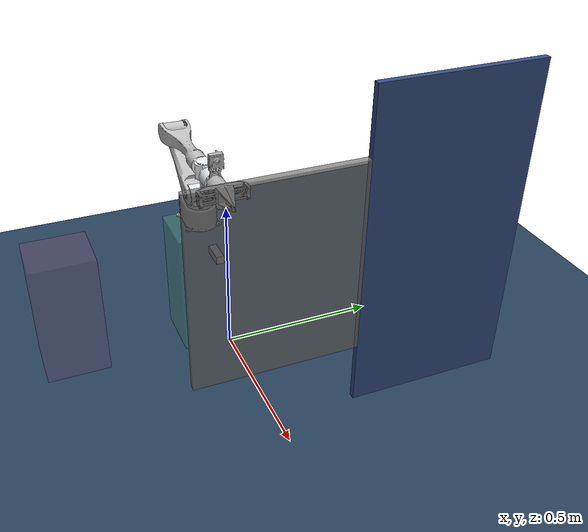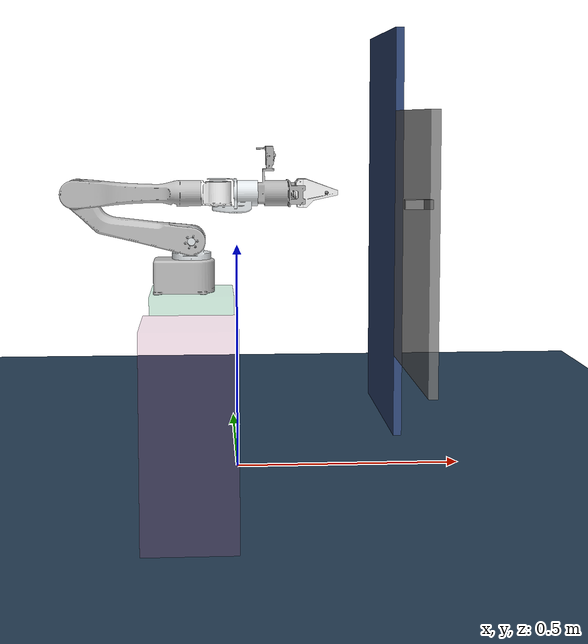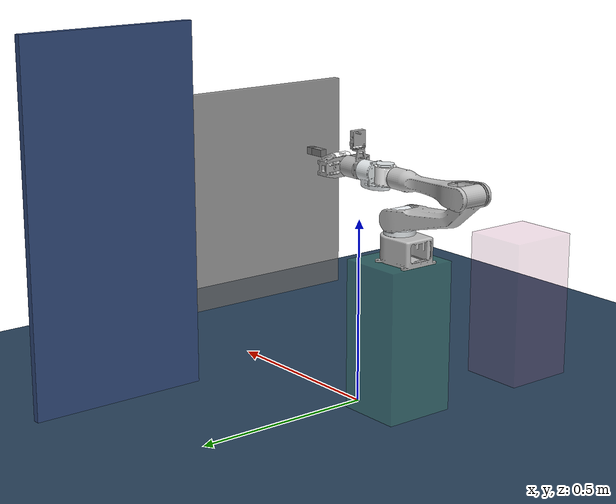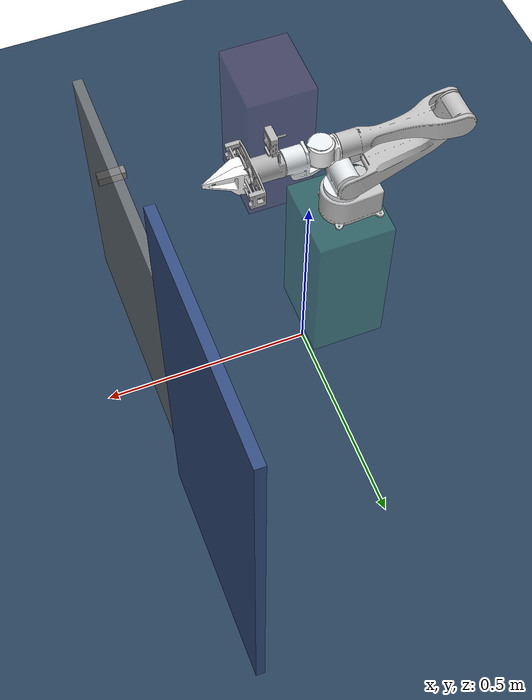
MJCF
<mujoco model="airbot_arm_manipulation_otd">

    <include file="scene.xml"/>
    <include file="airbot_arm_dependencies.xml"/>
    <include file="airbot_arm.xml"/>

    <tendon>
      <fixed name="split">
        <joint joint="endleft" coef="8"/>
        <joint joint="endright" coef="-8"/>
      </fixed>
    </tendon>

    <equality>
    </equality>

    <actuator>
        <position ctrllimited="true" ctrlrange="0.001 0.04" joint="endleft" kp="200" user="1"/>
        <position ctrllimited="true" ctrlrange="-0.04 -0.001" joint="endright" kp="200" user="1"/>

        <!-- 夹爪开合 actuator -->
        <general class="Gripper" name="fingers_actuator" tendon="split" forcerange="-5 5" ctrlrange="0 255" gainprm="0.3137255 0 0" biasprm="0 -100 -10"/>
    </actuator>

    <!-- keyframe -->
    <keyframe>
    </keyframe>

</mujoco>

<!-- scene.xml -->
<mujocoinclude model="airbot_arm_manipulation_otd scene">

    <statistic center="0.3 0 0.4" extent="0.8"/>

    <visual>
      <headlight diffuse="0.6 0.6 0.6" ambient="0.1 0.1 0.1" specular="0 0 0"/>
      <rgba haze="0.15 0.25 0.35 1"/>
      <global azimuth="120" elevation="-20"/>
    </visual>

    <asset>
      <texture type="skybox" builtin="gradient" rgb1="0.3 0.5 0.7" rgb2="0 0 0" width="512" height="3072"/>
      <texture type="2d" name="groundplane" builtin="checker" mark="edge" rgb1="0.2 0.3 0.4" rgb2="0.1 0.2 0.3"
        markrgb="0.8 0.8 0.8" width="300" height="300"/>
      <material name="groundplane" texture="groundplane" texuniform="true" texrepeat="5 5" reflectance="0.2"/>
    </asset>

    <worldbody>
        <!-- Light -->
        <light pos="0 0 1.5" dir="0 0 -1" directional="true"/>

        <!-- floor -->
        <geom name="floor" size="0 0 0.05" type="plane" material="groundplane"/>

        <!-- wall -->
        <body name="wall" pos="0.4 0.5 0.5">
            <geom type="box" size="0.01 0.25 0.5" rgba="0.2 0.3 0.5 0.9"/>
        </body>

        <!-- Door -->
        <body name="door" pos="0.4 0 0.5">
            <inertial pos="0 0 0" mass="0.5" diaginertia="0.001 0.001 0.001" />
            <joint name="joint_door" class="Door" type="hinge" frictionloss="0.01" pos="0.0 0.25 0.0" axis="0 0 1" limited="true" range="0 1.57" />
            <geom type="box" size="0.01 0.25 0.3" rgba="0.5 0.5 0.5 0.8"/>

            <body name="door_handle" pos="-0.02 -0.16 0.1">
                <geom type="box" size="0.03 0.01 0.01" rgba="0.5 0.5 0.5 1"/>
                <inertial mass="0.001" pos="0 0 0" diaginertia="0.001 0.001 0.001"/>
            </body>
        </body>

        <!-- 附加物体 -->
        <body name="box_additional" pos="-0.1 -0.5 0.2">
            <geom type="box" size="0.09 0.1 0.205" rgba="0.7 0.3 0.5 0.2"/>
            <inertial pos="0 0 0" mass="1000" diaginertia="0.002 0.002 0.002" />
        </body>

    </worldbody>

</mujocoinclude>

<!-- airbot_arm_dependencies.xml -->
<mujocoinclude model="airbot_arm_dependencies">

    <compiler angle="radian" inertiafromgeom="auto" meshdir="meshes" autolimits="true" />

    <option integrator="implicitfast"/>
    <option viscosity="0.1"/>
    <option cone="elliptic" impratio="10"/>

    <default>
        <!-- damping -->
        <default class="AirBot">
            <joint damping='3'/>
        </default>
        <default class="Door">
            <joint damping='0.1'/>
        </default>
        <default class="Gripper">
            <joint damping='500' solimplimit="0.95 0.99 0.001" solreflimit="0.005 1" />
            <general biastype="affine" />
        </default>

    </default>

    <!-- meshes -->
    <asset>
        <mesh name="arm_base" file="arm_base.STL" scale="1 1 1" />
        <mesh name="link1" file="link1.STL" scale="1 1 1" />
        <mesh name="link2" file="link2.STL" scale="1 1 1" />
        <mesh name="link3" file="link3.STL" scale="1 1 1" />
        <mesh name="link4" file="link4.STL" scale="1 1 1" />
        <mesh name="link5" file="link5.STL" scale="1 1 1" />
        <mesh name="link6" file="link6.STL" scale="1 1 1" />
        <mesh name="left" file="left.STL" scale="1 1 1" />
        <mesh name="right" file="right.STL" scale="1 1 1" />
    </asset>

    <!--Contacts-->
    <contact>
        <exclude body1="wall" body2="door"/>
        <exclude body1="door" body2="door_handle"/>
        <exclude body1="box_link" body2="airbot_arm_arm_base"/>
        <exclude body1="airbot_arm_arm_base" body2="airbot_arm_link1"/>
        <exclude body1="airbot_arm_link6" body2="airbot_arm_finger_left"/>
        <exclude body1="airbot_arm_link6" body2="airbot_arm_finger_right"/>
    </contact>

</mujocoinclude>

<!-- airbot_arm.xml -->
<!-- airbot play v3.0 -->
<mujocoinclude model="airbot_arm">

    <worldbody>
        <!-- airbot_arm and box_link -->
        <body name="box_link" pos="-0.1 -0.05 0.2">
            <geom type="box" size="0.09 0.1 0.205" rgba="0.3 0.7 0.5 0.3"/>
            <inertial pos="0 0 0" mass="1000" diaginertia="0.002 0.002 0.002" />

            <body name="airbot_arm_arm_base" pos="0 0 0.2">
                <geom type="mesh" rgba="0.75294 0.75294 0.75294 1" mesh="arm_base" />

                <body name="airbot_arm_link1" pos="0 0 0.117">
                    <inertial pos="7.9126e-05 -0.002527 -0.0041359" quat="0.696716 0.716558 0.0238919 -0.0236876" mass="0.54639" diaginertia="0.000346294 0.000325437 0.000286269" />
                    <joint name="joint1" class="AirBot" pos="0 0 0" axis="0 0 1" limited="true" range="-3.14 2.09" />
                    <geom type="mesh" rgba="0.89804 0.91765 0.92941 1" mesh="link1" />

                    <body name="airbot_arm_link2" pos="0 0 0" quat="0.135866 0.135867 -0.69393 0.693932">
                        <inertial pos="0.22493 0.0047721 0.008023" quat="-0.210875 0.632473 -0.273056 0.693506" mass="0.64621" diaginertia="0.00516535 0.00505042 0.000418626" />
                        <joint name="joint2" class="AirBot" pos="0 0 0" axis="0 0 1" limited="true" range="-2.96 0.17" />
                        <geom type="mesh" rgba="0.75294 0.75294 0.75294 1" mesh="link2" />

                        <body name="airbot_arm_link3" pos="0.27009 0 0" quat="0.192144 0 0 -0.981367">
                            <inertial pos="0.16813 -5.5576e-05 0.0031184" quat="0.511278 0.488423 0.489191 0.510617" mass="0.26829" diaginertia="0.0031527 0.0030951 0.000239403" />
                            <joint name="joint3" class="AirBot" pos="0 0 0" axis="0 0 1" limited="true" range="-0.087 3.14" />
                            <geom type="mesh" rgba="0.75294 0.75294 0.75294 1" mesh="link3" />

                            <body name="airbot_arm_link4" pos="0.30854 0 0" quat="-2.59734e-06 0.707105 2.59735e-06 0.707108">
                                <inertial pos="5.2436e-06 0.00040412 -0.03228" quat="0.999969 -0.000174762 -0.00792041 -6.98144e-05" mass="0.34876" diaginertia="0.000423574 0.000412 0.000126826" />
                                <joint name="joint4" class="AirBot" pos="0 0 0" axis="0 0 1" limited="true" range="-2.96 2.96" />
                                <geom type="mesh" rgba="1 1 1 1" mesh="link4" />

                                <body name="airbot_arm_link5" pos="0 0 0" quat="0.707105 0.707108 0 0">
                                    <inertial pos="8.3328e-06 0.026148 0.002525" quat="0.531568 0.4663 0.4663 0.531568" mass="0.36132" diaginertia="0.0004677 0.000432922 0.000178178" />
                                    <joint name="joint5" class="AirBot" pos="0 0 0" axis="0 0 1" limited="true" range="-1.74 1.74" />
                                    <geom type="mesh" rgba="0.89804 0.91765 0.92941 1" mesh="link5" />

                                    <body name="airbot_arm_link6" pos="0 0.23645 0" quat="0.499998 -0.5 0.5 0.500002">
                                        <inertial pos="-0.0047053 7.3857e-05 -0.12293" mass="0.53855" diaginertia="5e-05 5e-05 3.85e-05" />
                                        <joint name="joint6" class="AirBot" pos="0 0 0" axis="0 0 1" limited="true" range="-3.14 3.14" />
                                        <geom type="mesh" rgba="0.69804 0.69804 0.69804 1" mesh="link6" />
                                        <site name="attachment_site" pos="0.0 0.0 0.0" quat="1 0 0 0"/>
                                        <site name="eef_site" pos="0 0 0.0" quat="0 0.7071068 -0.7071068 0"/>

                                        <body name="airbot_arm_finger_left" pos="0 0.004 0" quat="0.707105 0 -0.707108 0">
                                            <inertial pos="-0.049039 -0.0096764 0.00038868" quat="0.650491 0.0296695 0.0398251 0.757889" mass="0.061803" diaginertia="2.74809e-05 1.88104e-05 1.19127e-05" />
                                            <joint name="endleft" class="Gripper" pos="0 0 0" axis="0 1 0" type="slide" limited="true" range="0.0 0.04" />
                                            <geom condim="4" type="mesh" rgba="1 1 1 1" mesh="left" euler="0 0 0"
                                                  friction="1 0.005 0.0001" solimp="2 1 0.01" solref="0.01 1" priority="1" />
                                        </body>

                                        <body name="airbot_arm_finger_right" pos="0 -0.004 0" quat="0.707105 0 -0.707108 0">
                                            <inertial pos="-0.048742 0.0096369 0.00044322" quat="0.757393 0.0415116 0.0313705 0.650883" mass="0.0626" diaginertia="2.79281e-05 1.90181e-05 1.21737e-05" />
                                            <joint name="endright" class="Gripper" pos="0 0 0" axis="0 1 0" type="slide" limited="true" range="-0.04 -0.0" />
                                            <geom condim="4" type="mesh" rgba="1 1 1 1" mesh="right" euler="0 0 0"
                                                  friction="1 0.005 0.0001" solimp="2 1 0.01" solref="0.01 1" priority="1" />
                                        </body>

                                    </body>
                                </body>
                            </body>
                        </body>
                    </body>
                </body>
            </body>
        </body>
    </worldbody>

</mujocoinclude>
